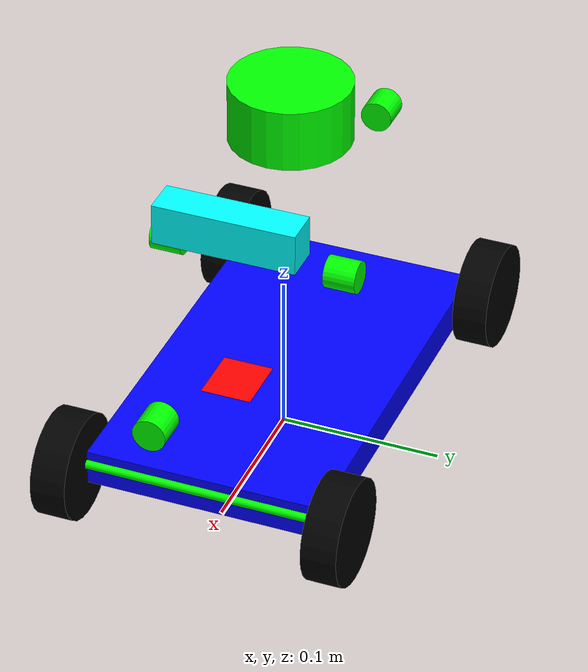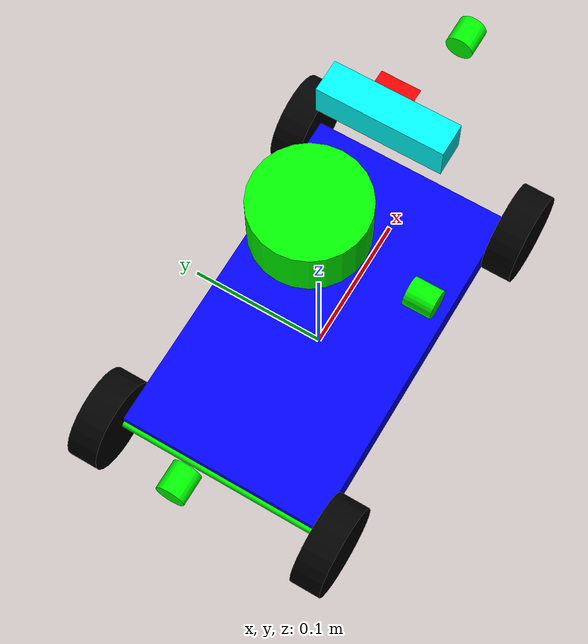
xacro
<?xml version="1.0"?>
<robot xmlns:xacro="http://www.ros.org/wiki/xacro" name="ackermann_vehicle">

    <xacro:include filename="common_properties.xacro" />
    <xacro:include filename="mobile_robot_gazebo.xacro" />
    <xacro:include filename="vehicle_properties.xacro" />

    <!-- BASE LINK -->
    <link name="base_footprint"/>

    <joint name="base_joint" type="fixed">
        <parent link="base_footprint"/>
        <child link="base_link"/>
        <origin xyz="0.0 0.0 ${wheel_radius}" rpy="0.0 0.0 0.0"/>
    </joint>

    <link name="base_link">
        <visual>
            <geometry>
                <box size="${chasis_length} ${chasis_width} ${chasis_height}"/>
            </geometry>
            <material name="blue">
                <color rgba="0.0 0.0 1.0 1.0"/>
            </material>
        </visual>
        <collision>
            <geometry>
                <box size="${chasis_length} ${chasis_width} ${chasis_height}"/>
            </geometry>
        </collision>
        <xacro:box_inertia m="${chasis_mass}" l="${chasis_length}" w="${chasis_width}" h="${chasis_height}" o_xyz="0 0 0" o_rpy="0 0 0"/>
    </link>

    <!-- Steering Knuckles -->
    <xacro:steering_link prefix="front_right"/>
    <joint name="front_right_steering_joint" type="revolute">
        <parent link="base_link"/>
        <child link="front_right_steering_link"/>
        <origin xyz="0.128 -0.085 0" rpy="0 0 0"/>
        <axis xyz="0 0 1"/>
        <limit lower="-0.5236" upper="0.5236" effort="1000" velocity="3.125"/>
    </joint>

    <xacro:steering_link prefix="front_left"/>
    <joint name="front_left_steering_joint" type="revolute">
        <parent link="base_link"/>
        <child link="front_left_steering_link"/>
        <origin xyz="0.128 0.085 0" rpy="0 0 0"/>
        <axis xyz="0 0 1"/>
        <limit lower="-0.5236" upper="0.5236" effort="1000" velocity="3.125"/>
    </joint>

    <!-- Wheels -->
    <xacro:wheel_link prefix="rear_left"/>
    <xacro:wheel_link prefix="rear_right"/>
    <xacro:wheel_link prefix="front_left"/>
    <xacro:wheel_link prefix="front_right"/>

    <joint name="rear_left_wheel_joint" type="continuous">
        <parent link="base_link"/>
        <child link="rear_left_wheel_link"/>
        <origin xyz="-0.130 0.085 0" rpy="1.57 0.0 0.0"/>
        <axis xyz="0 0 1"/>
    </joint>

    <joint name="rear_right_wheel_joint" type="continuous">
        <parent link="base_link"/>
        <child link="rear_right_wheel_link"/>
        <origin xyz="-0.130 -0.085 0" rpy="1.57 0.0 0.0"/>
        <axis xyz="0 0 1"/>
    </joint>

    <joint name="front_left_wheel_joint" type="continuous">
        <parent link="front_left_steering_link"/>
        <child link="front_left_wheel_link"/>
        <origin xyz="0 0 0" rpy="1.57 0.0 0.0"/>
        <axis xyz="0 0 1"/>
        <mimic joint="rear_left_wheel_joint" multiplier="1.0" offset="0"/>
    </joint>

    <joint name="front_right_wheel_joint" type="continuous">
        <parent link="front_right_steering_link"/>
        <child link="front_right_wheel_link"/>
        <origin xyz="0 0 0" rpy="1.57 0.0 0.0"/>
        <axis xyz="0 0 1"/>
        <mimic joint="rear_right_wheel_joint" multiplier="1.0" offset="0"/>
    </joint>

    <!-- Axles -->
    <xacro:axle prefix="front_"/>
    <xacro:axle prefix="rear_"/>

    <joint name="front_axle_joint" type="fixed">
        <parent link="base_link"/>
        <child link="front_axle"/>
        <origin xyz="${chasis_length/2} 0.0 ${wheel_radius/14}" rpy="1.57 0.0 0.0"/>

    </joint>

    <joint name="rear_axle_joint" type="fixed">
        <parent link="base_link"/>
        <child link="rear_axle"/>
        <origin xyz="-${chasis_length/2} 0.0 ${wheel_radius/14}" rpy="1.57 0.0 0.0"/>
    </joint>

    <!-- Cameras -->
    <xacro:csi prefix="front_"/>
    <xacro:csi prefix="rear_"/>
    <xacro:csi prefix="left_"/>
    <xacro:csi prefix="right_"/>

    <joint name="csi_front_axle_joint" type="fixed">
        <parent link="base_link"/>
        <child link="front_csi"/>
        <origin xyz="0.193 0.0 0.0953" rpy="-1.57 0 -1.57"/>
    </joint>

    <joint name="csi_rear_axle_joint" type="fixed">
        <parent link="base_link"/>
        <child link="rear_csi"/>
        <origin xyz="-0.165 0.0 0.0953" rpy="-1.57 0 1.57"/>
    </joint>

    <joint name="csi_left_joint" type="fixed">
        <parent link="base_link"/>
        <child link="left_csi"/>
        <origin xyz="0.014 0.0438 0.0953" rpy="-1.57 0 0"/>
    </joint>

    <joint name="csi_right_joint" type="fixed">
        <parent link="base_link"/>
        <child link="right_csi"/>
        <origin xyz="0.014 -0.0674 0.0953" rpy="-1.57 0 3.1416"/>
    </joint>

    <!-- IMU -->
    <link name="IMU">
        <visual>
            <geometry>
                <box size="${imu_length} ${imu_width} ${imu_height}"/>
            </geometry>
            <material name="red">
                <color rgba="1.0 0.0 0.0 1.0"/>
            </material>
        </visual>
        <collision>
            <geometry>
                <box size="${imu_length} ${imu_width} ${imu_height}"/>
            </geometry>
        </collision>
        <xacro:box_inertia m="${imu_mass}" l="${imu_length}" w="${imu_width}" h="${imu_height}" o_xyz="0 0 0" o_rpy="0 0 0"/>
    </link>

    <joint name="imu_joint" type="fixed">
        <parent link="base_link"/>
        <child link="IMU"/>
        <origin xyz="0.1278 0.0223 0.0895" rpy="0 0 0"/>
    </joint>

    <link name="realsense_rear">
        <visual>
            <geometry>
                <box size="${rgbd_length} ${rgbd_width} ${rgbd_height}"/>
            </geometry>
            <material name="cyan">
                <color rgba="0.0 1.0 1.0 1.0"/>
            </material>
        </visual>
        <collision>
            <geometry>
                <box size="${rgbd_length} ${rgbd_width} ${rgbd_height}"/>
            </geometry>
        </collision>
        <xacro:box_inertia m="${rgbd_mass}" l="${rgbd_length}" w="${rgbd_width}" h="${rgbd_height}" o_xyz="0 0 0" o_rpy="0 0 0"/>
    </link>

    <joint name="realsense_rear_joint" type="fixed">
        <parent link="base_link"/>
        <child link="realsense_rear"/>
        <origin xyz="0.0822 -0.0001 0.1582" rpy="-1.57 0 -1.57"/>
    </joint>

    <link name="lidar">
        <visual>
            <geometry>
                <cylinder radius="${lidar_radius}" length="${lidar_length}"/>
            </geometry>
            <material name="green">
                <color rgba="0.0 1.0 0.0 1.0"/>
            </material>
        </visual>
        <collision>
            <geometry>
                <cylinder radius="${lidar_radius}" length="${lidar_length}"/>
            </geometry>
        </collision>
        <xacro:cylinder_inertia m="${lidar_mass}" r="${lidar_radius}" l="${lidar_length}" o_xyz="0 0 0" o_rpy="0 0 0"/>
    </link>

    <joint name="lidar_joint" type="fixed">
        <parent link="base_link"/>
        <child link="lidar"/>
        <origin xyz="-0.0108 -0.0001 0.186" rpy="0 0 1.57"/>
    </joint>

</robot>

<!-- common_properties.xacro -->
<robot xmlns:xacro="http://www.ros.org/wiki/xacro">
    <material name="blue">
        <color rgba="0 0 0.5 1" />
    </material>

    <material name="green">
        <color rgba="0 0.5 0 1" />
    </material>

    <material name="grey">
        <color rgba="0.5 0.5 0.5 1" />
    </material>

    <material name="black">
        <color rgba="0.05 0.05 0.05 1" />
    </material>

    <xacro:macro name="box_inertia" params="m l w h o_xyz o_rpy">
        <inertial>
            <origin xyz="${o_xyz}" rpy="${o_rpy}"/>
            <mass value="${m}"/>
            <inertia ixx="${m*(w*w + h*h)/12}" ixy="0.0" ixz="0.0" iyy="${m*(l*l + h*h)/12}" iyz="0.0" izz="${m*(w*w + l*l)/12}"/>
        </inertial>
    </xacro:macro>

    <xacro:macro name="sphere_inertia" params="m r o_xyz o_rpy">
        <inertial>
            <origin xyz="${o_xyz}" rpy="${o_rpy}"/>
            <mass value="${m}"/>
            <inertia ixx="${2*m*r*r/5}" ixy="0.0" ixz="0.0"
                     iyy="${2*m*r*r/5}" iyz="0.0"
                     izz="${2*m*r*r/5}"/>
        </inertial>
    </xacro:macro>

    <xacro:macro name="cylinder_inertia" params="m r l o_xyz o_rpy">
        <inertial>
            <origin xyz="${o_xyz}" rpy="${o_rpy}"/>
            <mass value="${m}"/>
            <inertia ixx="${m*(3*r*r + l*l)/12}" ixy="0.0" ixz="0.0"
                     iyy="${m*(3*r*r + l*l)/12}" iyz="0.0"
                     izz="${m*r*r/2}"/>
        </inertial>
    </xacro:macro>

</robot>

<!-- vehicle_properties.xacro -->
<robot xmlns:xacro="http://www.ros.org/wiki/xacro" name="ackermann_vehicle_properties">

    <!-- Xacro properties -->
    <xacro:property name="wheel_width" value="0.022"/>
    <xacro:property name="wheel_radius" value="0.033"/>
    <xacro:property name="wheel_mass" value="0.05"/>

    <xacro:property name="chasis_length" value="0.256"/>
    <xacro:property name="chasis_width" value="0.148"/>
    <xacro:property name="chasis_height" value="0.022"/>
    <xacro:property name="chasis_mass" value="1.0"/>

    <xacro:property name="csi_radius" value="0.01" />
    <xacro:property name="csi_length" value="0.02" />
    <xacro:property name="csi_mass" value="0.01" />

    <xacro:property name="axle_radius" value="0.003" />
    <xacro:property name="axle_length" value="0.148" />
    <xacro:property name="axle_mass" value="0.02" />

    <xacro:property name="steering_radius" value="0.005" />
    <xacro:property name="steering_length" value="0.02" />
    <xacro:property name="steering_mass" value="0.005" />

    <xacro:property name="imu_mass" value="0.005"/>
    <xacro:property name="imu_length" value="0.035"/>
    <xacro:property name="imu_width" value="0.03"/>
    <xacro:property name="imu_height" value="0.0001"/>

    <xacro:property name="rgbd_mass" value="0.072"/>
    <xacro:property name="rgbd_length" value="0.0883"/>
    <xacro:property name="rgbd_width" value="0.0255"/>
    <xacro:property name="rgbd_height" value="0.0229"/>

    <xacro:property name="lidar_mass" value="0.2"/>
    <xacro:property name="lidar_radius" value="0.0376"/>
    <xacro:property name="lidar_length" value="0.0384"/>

    <!-- Axle MACRO -->
    <xacro:macro name="axle" params="prefix">
        <link name="${prefix}axle">
            <visual>
                <geometry>
                    <cylinder radius="${axle_radius}" length="${axle_length}"/>
                </geometry>
                <material name="green">
                    <color rgba="0.0 1.0 0.0 1.0"/>
                </material>
            </visual>
            <collision>
                <geometry>
                    <box size="0.006 0.006 0.148"/>
                </geometry>
            </collision>
            <xacro:cylinder_inertia m="${axle_mass}" r="${axle_radius}" l="${axle_length}" o_xyz="0 0 0" o_rpy="0 0 0"/>
        </link>
    </xacro:macro>

    <!-- Camera MACRO -->
    <xacro:macro name="csi" params="prefix">
        <link name="${prefix}csi">
           <visual>
            <geometry>
                <cylinder radius="${csi_radius}" length="${csi_length}"/>
            </geometry>
            <material name="green">
                <color rgba="0.0 1.0 0.0 1.0"/>
            </material>
            </visual>
            <collision>
                <geometry>
                    <box size="0.02 0.02 0.02"/>
                </geometry>
            </collision>
            <xacro:cylinder_inertia m="${csi_mass}" r="${csi_radius}" l="${csi_length}" o_xyz="0 0 0" o_rpy="0 0 0"/>
        </link>
    </xacro:macro>

    <!-- Wheel MACRO -->
    <xacro:macro name="wheel_link" params="prefix">
        <link name="${prefix}_wheel_link">
            <visual>
                <geometry>
                    <cylinder radius="${wheel_radius}" length="${wheel_width}"/>
                </geometry>
                <material name="black">
                    <color rgba="0.0 0.0 0.0 1.0"/>
                </material>
            </visual>
            <collision>
                <geometry>
                    <cylinder radius="${wheel_radius}" length="${wheel_width}"/>
                </geometry>
            </collision>
            <xacro:cylinder_inertia m="${wheel_mass}" r="${wheel_radius}" l="${wheel_width}" o_xyz="0 0 0" o_rpy="0 0 0"/>
        </link>
    </xacro:macro>

    <!-- Steering Knuckles MACRO -->
    <xacro:macro name="steering_link" params="prefix">
        <link name="${prefix}_steering_link">
            <visual>
                <geometry>
                    <cylinder radius="${steering_radius}" length="${steering_length}"/>
                </geometry>
                <material name="red">
                    <color rgba="1.0 0.0 0.0 1.0"/>
                </material>
            </visual>
            <collision>
                <geometry>
                    <cylinder radius="${steering_radius}" length="${steering_length}"/>
                </geometry>
            </collision>
            <xacro:cylinder_inertia m="${steering_mass}" r="${steering_radius}" l="${steering_length}" o_xyz="0 0 0" o_rpy="0 0 0"/>
        </link>
    </xacro:macro>

</robot>
